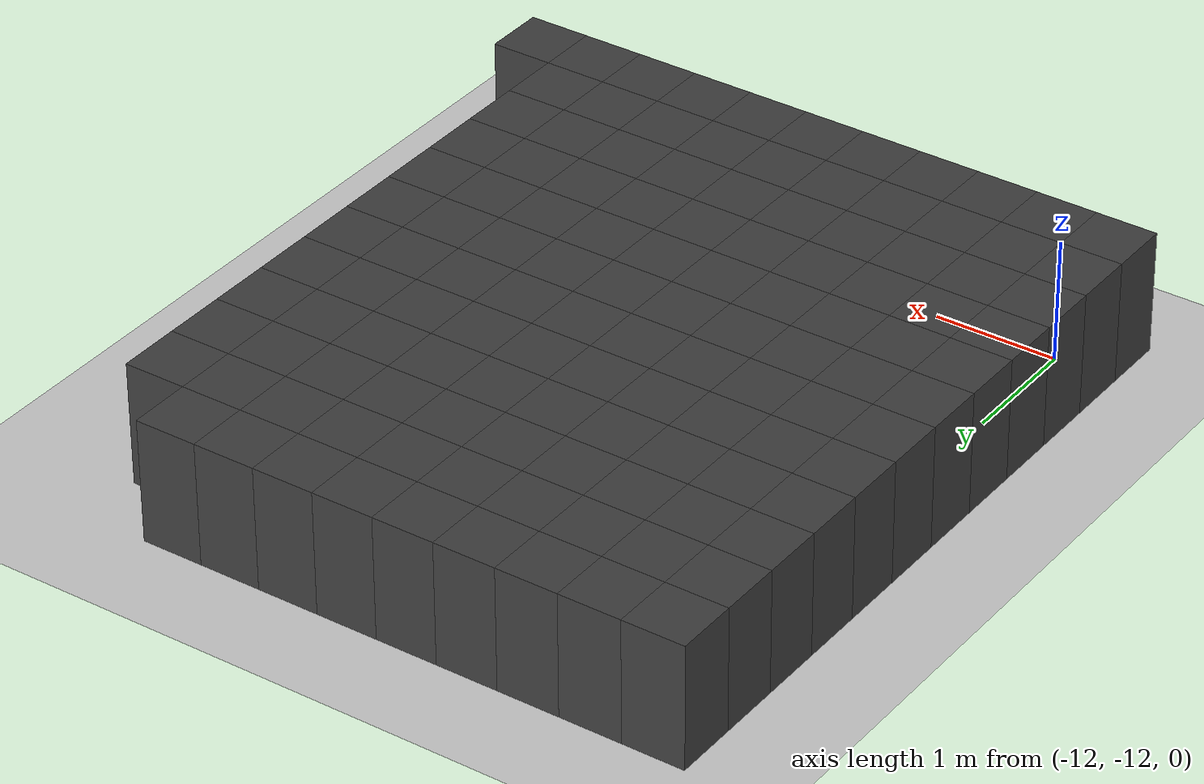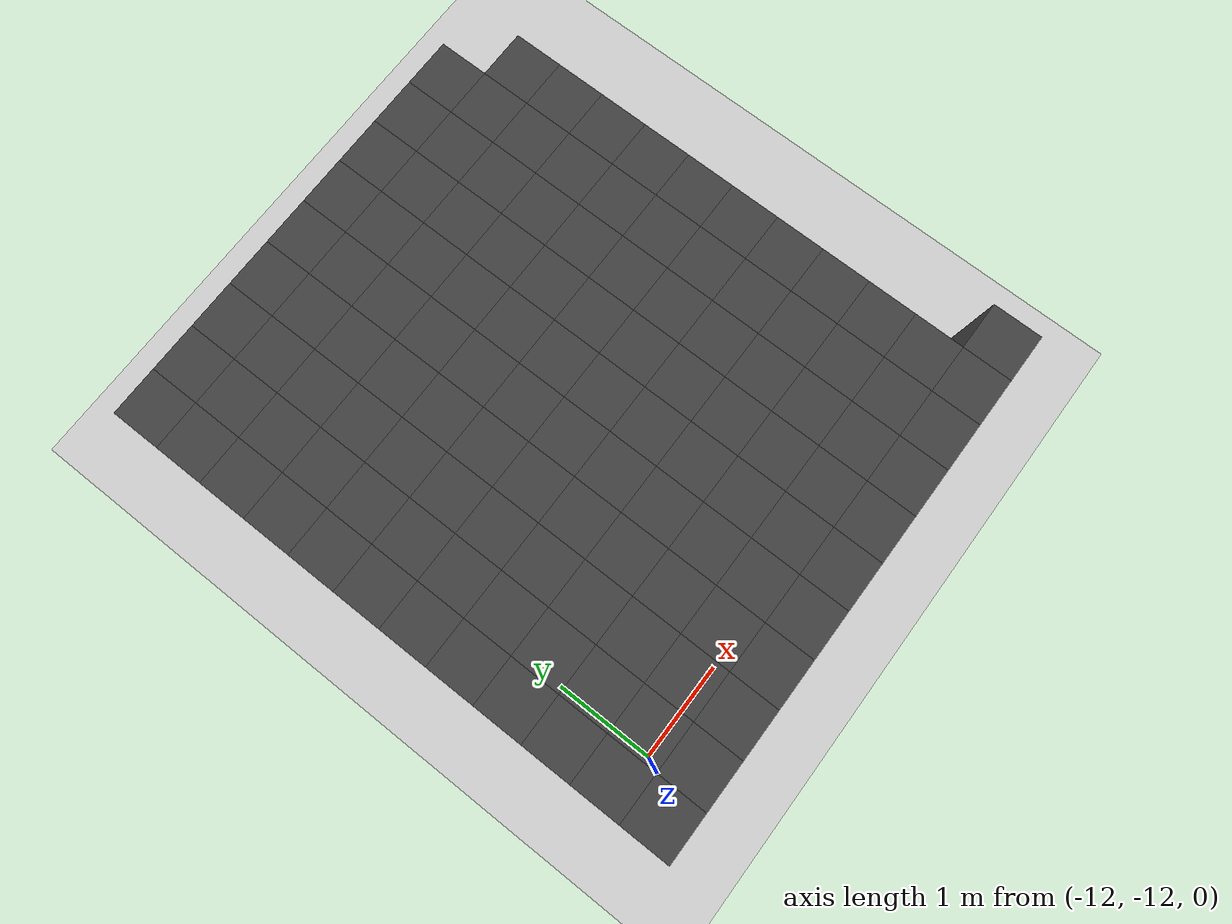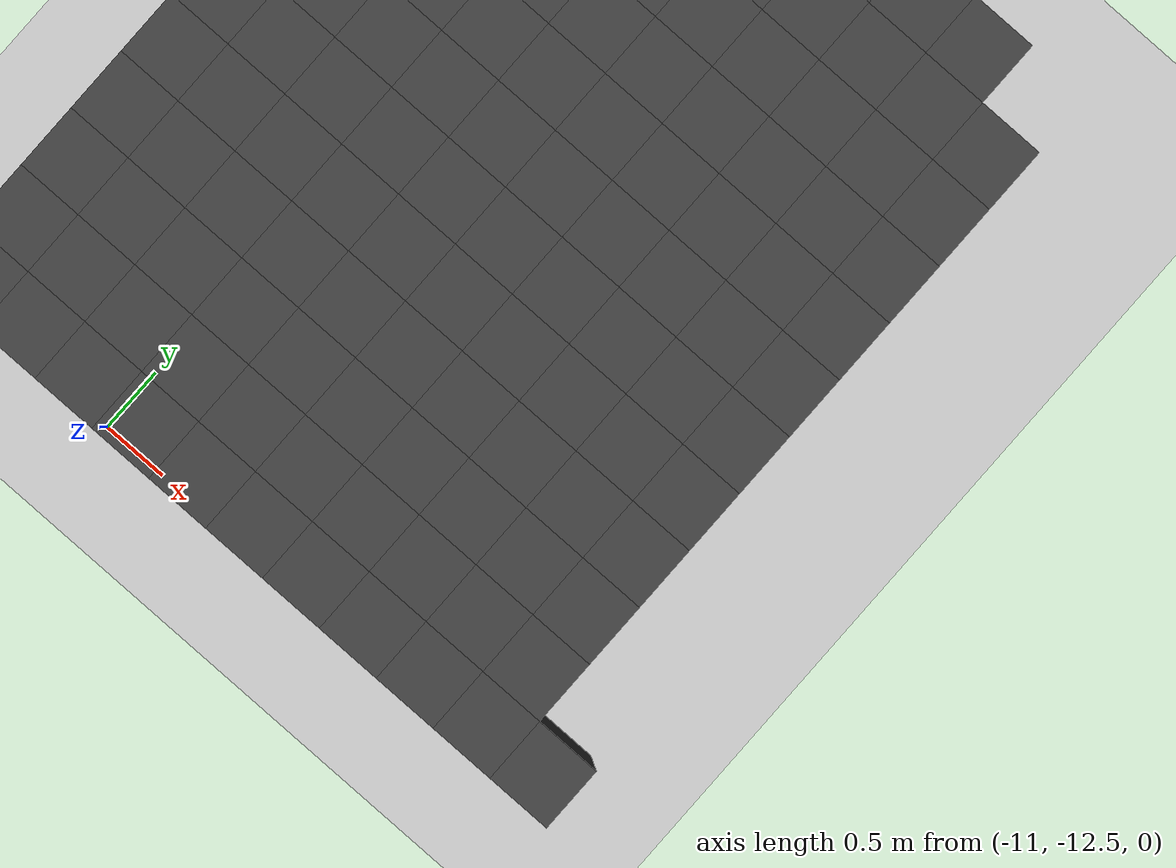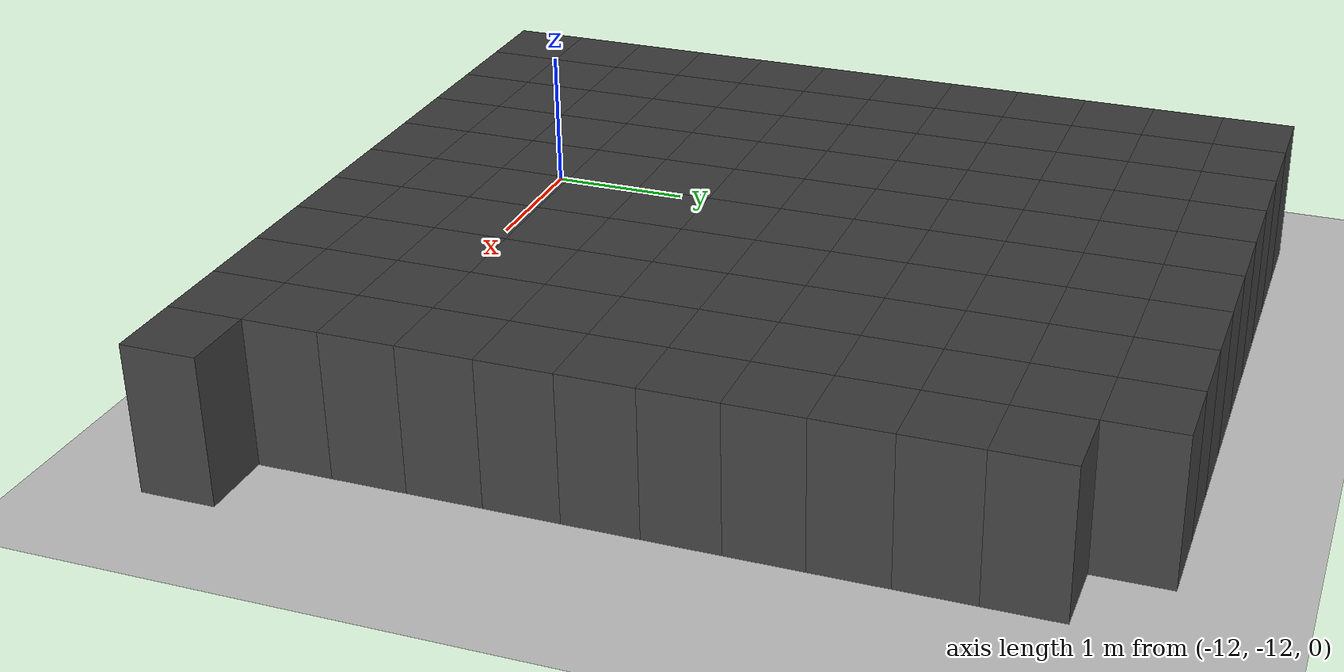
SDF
<sdf version="1.7">
 <world name="map_12885">
  <model name="ground_plane">
   <static>true</static>
   <link name="link">
    <collision name="collision">
     <geometry><plane><normal>0 0 1</normal><size>200 200</size></plane></geometry>
    </collision>
    <visual name="visual">
     <geometry><plane><normal>0 0 1</normal><size>200 200</size></plane></geometry>
     <material><ambient>0.8 0.8 0.8 1</ambient><diffuse>0.8 0.8 0.8 1</diffuse></material>
    </visual>
   </link>
  </model>
  <model name="maze_environment">
   <static>true</static>
   <link name="wall_1514">
    <pose>-12.250 -6.750 0.500 0 0 0</pose>
    <collision name="col"><geometry><box><size>0.5 0.5 1.0</size></box></geometry></collision>
    <visual name="vis">
     <geometry><box><size>0.5 0.5 1.0</size></box></geometry>
     <material><ambient>0.15 0.15 0.15 1</ambient><diffuse>0.25 0.25 0.25 1</diffuse></material>
    </visual>
   </link>
   <link name="wall_1515">
    <pose>-11.750 -6.750 0.500 0 0 0</pose>
    <collision name="col"><geometry><box><size>0.5 0.5 1.0</size></box></geometry></collision>
    <visual name="vis">
     <geometry><box><size>0.5 0.5 1.0</size></box></geometry>
     <material><ambient>0.15 0.15 0.15 1</ambient><diffuse>0.25 0.25 0.25 1</diffuse></material>
    </visual>
   </link>
   <link name="wall_1516">
    <pose>-11.250 -6.750 0.500 0 0 0</pose>
    <collision name="col"><geometry><box><size>0.5 0.5 1.0</size></box></geometry></collision>
    <visual name="vis">
     <geometry><box><size>0.5 0.5 1.0</size></box></geometry>
     <material><ambient>0.15 0.15 0.15 1</ambient><diffuse>0.25 0.25 0.25 1</diffuse></material>
    </visual>
   </link>
   <link name="wall_1517">
    <pose>-10.750 -6.750 0.500 0 0 0</pose>
    <collision name="col"><geometry><box><size>0.5 0.5 1.0</size></box></geometry></collision>
    <visual name="vis">
     <geometry><box><size>0.5 0.5 1.0</size></box></geometry>
     <material><ambient>0.15 0.15 0.15 1</ambient><diffuse>0.25 0.25 0.25 1</diffuse></material>
    </visual>
   </link>
   <link name="wall_1518">
    <pose>-10.250 -6.750 0.500 0 0 0</pose>
    <collision name="col"><geometry><box><size>0.5 0.5 1.0</size></box></geometry></collision>
    <visual name="vis">
     <geometry><box><size>0.5 0.5 1.0</size></box></geometry>
     <material><ambient>0.15 0.15 0.15 1</ambient><diffuse>0.25 0.25 0.25 1</diffuse></material>
    </visual>
   </link>
   <link name="wall_1519">
    <pose>-9.750 -6.750 0.500 0 0 0</pose>
    <collision name="col"><geometry><box><size>0.5 0.5 1.0</size></box></geometry></collision>
    <visual name="vis">
     <geometry><box><size>0.5 0.5 1.0</size></box></geometry>
     <material><ambient>0.15 0.15 0.15 1</ambient><diffuse>0.25 0.25 0.25 1</diffuse></material>
    </visual>
   </link>
   <link name="wall_1520">
    <pose>-9.250 -6.750 0.500 0 0 0</pose>
    <collision name="col"><geometry><box><size>0.5 0.5 1.0</size></box></geometry></collision>
    <visual name="vis">
     <geometry><box><size>0.5 0.5 1.0</size></box></geometry>
     <material><ambient>0.15 0.15 0.15 1</ambient><diffuse>0.25 0.25 0.25 1</diffuse></material>
    </visual>
   </link>
   <link name="wall_1521">
    <pose>-8.750 -6.750 0.500 0 0 0</pose>
    <collision name="col"><geometry><box><size>0.5 0.5 1.0</size></box></geometry></collision>
    <visual name="vis">
     <geometry><box><size>0.5 0.5 1.0</size></box></geometry>
     <material><ambient>0.15 0.15 0.15 1</ambient><diffuse>0.25 0.25 0.25 1</diffuse></material>
    </visual>
   </link>
   <link name="wall_1522">
    <pose>-8.250 -6.750 0.500 0 0 0</pose>
    <collision name="col"><geometry><box><size>0.5 0.5 1.0</size></box></geometry></collision>
    <visual name="vis">
     <geometry><box><size>0.5 0.5 1.0</size></box></geometry>
     <material><ambient>0.15 0.15 0.15 1</ambient><diffuse>0.25 0.25 0.25 1</diffuse></material>
    </visual>
   </link>
   <link name="wall_1545">
    <pose>-12.250 -7.250 0.500 0 0 0</pose>
    <collision name="col"><geometry><box><size>0.5 0.5 1.0</size></box></geometry></collision>
    <visual name="vis">
     <geometry><box><size>0.5 0.5 1.0</size></box></geometry>
     <material><ambient>0.15 0.15 0.15 1</ambient><diffuse>0.25 0.25 0.25 1</diffuse></material>
    </visual>
   </link>
   <link name="wall_1546">
    <pose>-11.750 -7.250 0.500 0 0 0</pose>
    <collision name="col"><geometry><box><size>0.5 0.5 1.0</size></box></geometry></collision>
    <visual name="vis">
     <geometry><box><size>0.5 0.5 1.0</size></box></geometry>
     <material><ambient>0.15 0.15 0.15 1</ambient><diffuse>0.25 0.25 0.25 1</diffuse></material>
    </visual>
   </link>
   <link name="wall_1547">
    <pose>-11.250 -7.250 0.500 0 0 0</pose>
    <collision name="col"><geometry><box><size>0.5 0.5 1.0</size></box></geometry></collision>
    <visual name="vis">
     <geometry><box><size>0.5 0.5 1.0</size></box></geometry>
     <material><ambient>0.15 0.15 0.15 1</ambient><diffuse>0.25 0.25 0.25 1</diffuse></material>
    </visual>
   </link>
   <link name="wall_1548">
    <pose>-10.750 -7.250 0.500 0 0 0</pose>
    <collision name="col"><geometry><box><size>0.5 0.5 1.0</size></box></geometry></collision>
    <visual name="vis">
     <geometry><box><size>0.5 0.5 1.0</size></box></geometry>
     <material><ambient>0.15 0.15 0.15 1</ambient><diffuse>0.25 0.25 0.25 1</diffuse></material>
    </visual>
   </link>
   <link name="wall_1549">
    <pose>-10.250 -7.250 0.500 0 0 0</pose>
    <collision name="col"><geometry><box><size>0.5 0.5 1.0</size></box></geometry></collision>
    <visual name="vis">
     <geometry><box><size>0.5 0.5 1.0</size></box></geometry>
     <material><ambient>0.15 0.15 0.15 1</ambient><diffuse>0.25 0.25 0.25 1</diffuse></material>
    </visual>
   </link>
   <link name="wall_1550">
    <pose>-9.750 -7.250 0.500 0 0 0</pose>
    <collision name="col"><geometry><box><size>0.5 0.5 1.0</size></box></geometry></collision>
    <visual name="vis">
     <geometry><box><size>0.5 0.5 1.0</size></box></geometry>
     <material><ambient>0.15 0.15 0.15 1</ambient><diffuse>0.25 0.25 0.25 1</diffuse></material>
    </visual>
   </link>
   <link name="wall_1551">
    <pose>-9.250 -7.250 0.500 0 0 0</pose>
    <collision name="col"><geometry><box><size>0.5 0.5 1.0</size></box></geometry></collision>
    <visual name="vis">
     <geometry><box><size>0.5 0.5 1.0</size></box></geometry>
     <material><ambient>0.15 0.15 0.15 1</ambient><diffuse>0.25 0.25 0.25 1</diffuse></material>
    </visual>
   </link>
   <link name="wall_1552">
    <pose>-8.750 -7.250 0.500 0 0 0</pose>
    <collision name="col"><geometry><box><size>0.5 0.5 1.0</size></box></geometry></collision>
    <visual name="vis">
     <geometry><box><size>0.5 0.5 1.0</size></box></geometry>
     <material><ambient>0.15 0.15 0.15 1</ambient><diffuse>0.25 0.25 0.25 1</diffuse></material>
    </visual>
   </link>
   <link name="wall_1553">
    <pose>-8.250 -7.250 0.500 0 0 0</pose>
    <collision name="col"><geometry><box><size>0.5 0.5 1.0</size></box></geometry></collision>
    <visual name="vis">
     <geometry><box><size>0.5 0.5 1.0</size></box></geometry>
     <material><ambient>0.15 0.15 0.15 1</ambient><diffuse>0.25 0.25 0.25 1</diffuse></material>
    </visual>
   </link>
   <link name="wall_1554">
    <pose>-7.750 -7.250 0.500 0 0 0</pose>
    <collision name="col"><geometry><box><size>0.5 0.5 1.0</size></box></geometry></collision>
    <visual name="vis">
     <geometry><box><size>0.5 0.5 1.0</size></box></geometry>
     <material><ambient>0.15 0.15 0.15 1</ambient><diffuse>0.25 0.25 0.25 1</diffuse></material>
    </visual>
   </link>
   <link name="wall_1579">
    <pose>-12.250 -7.750 0.500 0 0 0</pose>
    <collision name="col"><geometry><box><size>0.5 0.5 1.0</size></box></geometry></collision>
    <visual name="vis">
     <geometry><box><size>0.5 0.5 1.0</size></box></geometry>
     <material><ambient>0.15 0.15 0.15 1</ambient><diffuse>0.25 0.25 0.25 1</diffuse></material>
    </visual>
   </link>
   <link name="wall_1580">
    <pose>-11.750 -7.750 0.500 0 0 0</pose>
    <collision name="col"><geometry><box><size>0.5 0.5 1.0</size></box></geometry></collision>
    <visual name="vis">
     <geometry><box><size>0.5 0.5 1.0</size></box></geometry>
     <material><ambient>0.15 0.15 0.15 1</ambient><diffuse>0.25 0.25 0.25 1</diffuse></material>
    </visual>
   </link>
   <link name="wall_1581">
    <pose>-11.250 -7.750 0.500 0 0 0</pose>
    <collision name="col"><geometry><box><size>0.5 0.5 1.0</size></box></geometry></collision>
    <visual name="vis">
     <geometry><box><size>0.5 0.5 1.0</size></box></geometry>
     <material><ambient>0.15 0.15 0.15 1</ambient><diffuse>0.25 0.25 0.25 1</diffuse></material>
    </visual>
   </link>
   <link name="wall_1582">
    <pose>-10.750 -7.750 0.500 0 0 0</pose>
    <collision name="col"><geometry><box><size>0.5 0.5 1.0</size></box></geometry></collision>
    <visual name="vis">
     <geometry><box><size>0.5 0.5 1.0</size></box></geometry>
     <material><ambient>0.15 0.15 0.15 1</ambient><diffuse>0.25 0.25 0.25 1</diffuse></material>
    </visual>
   </link>
   <link name="wall_1583">
    <pose>-10.250 -7.750 0.500 0 0 0</pose>
    <collision name="col"><geometry><box><size>0.5 0.5 1.0</size></box></geometry></collision>
    <visual name="vis">
     <geometry><box><size>0.5 0.5 1.0</size></box></geometry>
     <material><ambient>0.15 0.15 0.15 1</ambient><diffuse>0.25 0.25 0.25 1</diffuse></material>
    </visual>
   </link>
   <link name="wall_1584">
    <pose>-9.750 -7.750 0.500 0 0 0</pose>
    <collision name="col"><geometry><box><size>0.5 0.5 1.0</size></box></geometry></collision>
    <visual name="vis">
     <geometry><box><size>0.5 0.5 1.0</size></box></geometry>
     <material><ambient>0.15 0.15 0.15 1</ambient><diffuse>0.25 0.25 0.25 1</diffuse></material>
    </visual>
   </link>
   <link name="wall_1585">
    <pose>-9.250 -7.750 0.500 0 0 0</pose>
    <collision name="col"><geometry><box><size>0.5 0.5 1.0</size></box></geometry></collision>
    <visual name="vis">
     <geometry><box><size>0.5 0.5 1.0</size></box></geometry>
     <material><ambient>0.15 0.15 0.15 1</ambient><diffuse>0.25 0.25 0.25 1</diffuse></material>
    </visual>
   </link>
   <link name="wall_1586">
    <pose>-8.750 -7.750 0.500 0 0 0</pose>
    <collision name="col"><geometry><box><size>0.5 0.5 1.0</size></box></geometry></collision>
    <visual name="vis">
     <geometry><box><size>0.5 0.5 1.0</size></box></geometry>
     <material><ambient>0.15 0.15 0.15 1</ambient><diffuse>0.25 0.25 0.25 1</diffuse></material>
    </visual>
   </link>
   <link name="wall_1587">
    <pose>-8.250 -7.750 0.500 0 0 0</pose>
    <collision name="col"><geometry><box><size>0.5 0.5 1.0</size></box></geometry></collision>
    <visual name="vis">
     <geometry><box><size>0.5 0.5 1.0</size></box></geometry>
     <material><ambient>0.15 0.15 0.15 1</ambient><diffuse>0.25 0.25 0.25 1</diffuse></material>
    </visual>
   </link>
   <link name="wall_1588">
    <pose>-7.750 -7.750 0.500 0 0 0</pose>
    <collision name="col"><geometry><box><size>0.5 0.5 1.0</size></box></geometry></collision>
    <visual name="vis">
     <geometry><box><size>0.5 0.5 1.0</size></box></geometry>
     <material><ambient>0.15 0.15 0.15 1</ambient><diffuse>0.25 0.25 0.25 1</diffuse></material>
    </visual>
   </link>
   <link name="wall_1609">
    <pose>-12.250 -8.250 0.500 0 0 0</pose>
    <collision name="col"><geometry><box><size>0.5 0.5 1.0</size></box></geometry></collision>
    <visual name="vis">
     <geometry><box><size>0.5 0.5 1.0</size></box></geometry>
     <material><ambient>0.15 0.15 0.15 1</ambient><diffuse>0.25 0.25 0.25 1</diffuse></material>
    </visual>
   </link>
   <link name="wall_1610">
    <pose>-11.750 -8.250 0.500 0 0 0</pose>
    <collision name="col"><geometry><box><size>0.5 0.5 1.0</size></box></geometry></collision>
    <visual name="vis">
     <geometry><box><size>0.5 0.5 1.0</size></box></geometry>
     <material><ambient>0.15 0.15 0.15 1</ambient><diffuse>0.25 0.25 0.25 1</diffuse></material>
    </visual>
   </link>
   <link name="wall_1611">
    <pose>-11.250 -8.250 0.500 0 0 0</pose>
    <collision name="col"><geometry><box><size>0.5 0.5 1.0</size></box></geometry></collision>
    <visual name="vis">
     <geometry><box><size>0.5 0.5 1.0</size></box></geometry>
     <material><ambient>0.15 0.15 0.15 1</ambient><diffuse>0.25 0.25 0.25 1</diffuse></material>
    </visual>
   </link>
   <link name="wall_1612">
    <pose>-10.750 -8.250 0.500 0 0 0</pose>
    <collision name="col"><geometry><box><size>0.5 0.5 1.0</size></box></geometry></collision>
    <visual name="vis">
     <geometry><box><size>0.5 0.5 1.0</size></box></geometry>
     <material><ambient>0.15 0.15 0.15 1</ambient><diffuse>0.25 0.25 0.25 1</diffuse></material>
    </visual>
   </link>
   <link name="wall_1613">
    <pose>-10.250 -8.250 0.500 0 0 0</pose>
    <collision name="col"><geometry><box><size>0.5 0.5 1.0</size></box></geometry></collision>
    <visual name="vis">
     <geometry><box><size>0.5 0.5 1.0</size></box></geometry>
     <material><ambient>0.15 0.15 0.15 1</ambient><diffuse>0.25 0.25 0.25 1</diffuse></material>
    </visual>
   </link>
   <link name="wall_1614">
    <pose>-9.750 -8.250 0.500 0 0 0</pose>
    <collision name="col"><geometry><box><size>0.5 0.5 1.0</size></box></geometry></collision>
    <visual name="vis">
     <geometry><box><size>0.5 0.5 1.0</size></box></geometry>
     <material><ambient>0.15 0.15 0.15 1</ambient><diffuse>0.25 0.25 0.25 1</diffuse></material>
    </visual>
   </link>
   <link name="wall_1615">
    <pose>-9.250 -8.250 0.500 0 0 0</pose>
    <collision name="col"><geometry><box><size>0.5 0.5 1.0</size></box></geometry></collision>
    <visual name="vis">
     <geometry><box><size>0.5 0.5 1.0</size></box></geometry>
     <material><ambient>0.15 0.15 0.15 1</ambient><diffuse>0.25 0.25 0.25 1</diffuse></material>
    </visual>
   </link>
   <link name="wall_1616">
    <pose>-8.750 -8.250 0.500 0 0 0</pose>
    <collision name="col"><geometry><box><size>0.5 0.5 1.0</size></box></geometry></collision>
    <visual name="vis">
     <geometry><box><size>0.5 0.5 1.0</size></box></geometry>
     <material><ambient>0.15 0.15 0.15 1</ambient><diffuse>0.25 0.25 0.25 1</diffuse></material>
    </visual>
   </link>
   <link name="wall_1617">
    <pose>-8.250 -8.250 0.500 0 0 0</pose>
    <collision name="col"><geometry><box><size>0.5 0.5 1.0</size></box></geometry></collision>
    <visual name="vis">
     <geometry><box><size>0.5 0.5 1.0</size></box></geometry>
     <material><ambient>0.15 0.15 0.15 1</ambient><diffuse>0.25 0.25 0.25 1</diffuse></material>
    </visual>
   </link>
   <link name="wall_1618">
    <pose>-7.750 -8.250 0.500 0 0 0</pose>
    <collision name="col"><geometry><box><size>0.5 0.5 1.0</size></box></geometry></collision>
    <visual name="vis">
     <geometry><box><size>0.5 0.5 1.0</size></box></geometry>
     <material><ambient>0.15 0.15 0.15 1</ambient><diffuse>0.25 0.25 0.25 1</diffuse></material>
    </visual>
   </link>
   <link name="wall_1630">
    <pose>-12.250 -8.750 0.500 0 0 0</pose>
    <collision name="col"><geometry><box><size>0.5 0.5 1.0</size></box></geometry></collision>
    <visual name="vis">
     <geometry><box><size>0.5 0.5 1.0</size></box></geometry>
     <material><ambient>0.15 0.15 0.15 1</ambient><diffuse>0.25 0.25 0.25 1</diffuse></material>
    </visual>
   </link>
   <link name="wall_1631">
    <pose>-11.750 -8.750 0.500 0 0 0</pose>
    <collision name="col"><geometry><box><size>0.5 0.5 1.0</size></box></geometry></collision>
    <visual name="vis">
     <geometry><box><size>0.5 0.5 1.0</size></box></geometry>
     <material><ambient>0.15 0.15 0.15 1</ambient><diffuse>0.25 0.25 0.25 1</diffuse></material>
    </visual>
   </link>
   <link name="wall_1632">
    <pose>-11.250 -8.750 0.500 0 0 0</pose>
    <collision name="col"><geometry><box><size>0.5 0.5 1.0</size></box></geometry></collision>
    <visual name="vis">
     <geometry><box><size>0.5 0.5 1.0</size></box></geometry>
     <material><ambient>0.15 0.15 0.15 1</ambient><diffuse>0.25 0.25 0.25 1</diffuse></material>
    </visual>
   </link>
   <link name="wall_1633">
    <pose>-10.750 -8.750 0.500 0 0 0</pose>
    <collision name="col"><geometry><box><size>0.5 0.5 1.0</size></box></geometry></collision>
    <visual name="vis">
     <geometry><box><size>0.5 0.5 1.0</size></box></geometry>
     <material><ambient>0.15 0.15 0.15 1</ambient><diffuse>0.25 0.25 0.25 1</diffuse></material>
    </visual>
   </link>
   <link name="wall_1634">
    <pose>-10.250 -8.750 0.500 0 0 0</pose>
    <collision name="col"><geometry><box><size>0.5 0.5 1.0</size></box></geometry></collision>
    <visual name="vis">
     <geometry><box><size>0.5 0.5 1.0</size></box></geometry>
     <material><ambient>0.15 0.15 0.15 1</ambient><diffuse>0.25 0.25 0.25 1</diffuse></material>
    </visual>
   </link>
   <link name="wall_1635">
    <pose>-9.750 -8.750 0.500 0 0 0</pose>
    <collision name="col"><geometry><box><size>0.5 0.5 1.0</size></box></geometry></collision>
    <visual name="vis">
     <geometry><box><size>0.5 0.5 1.0</size></box></geometry>
     <material><ambient>0.15 0.15 0.15 1</ambient><diffuse>0.25 0.25 0.25 1</diffuse></material>
    </visual>
   </link>
   <link name="wall_1636">
    <pose>-9.250 -8.750 0.500 0 0 0</pose>
    <collision name="col"><geometry><box><size>0.5 0.5 1.0</size></box></geometry></collision>
    <visual name="vis">
     <geometry><box><size>0.5 0.5 1.0</size></box></geometry>
     <material><ambient>0.15 0.15 0.15 1</ambient><diffuse>0.25 0.25 0.25 1</diffuse></material>
    </visual>
   </link>
   <link name="wall_1637">
    <pose>-8.750 -8.750 0.500 0 0 0</pose>
    <collision name="col"><geometry><box><size>0.5 0.5 1.0</size></box></geometry></collision>
    <visual name="vis">
     <geometry><box><size>0.5 0.5 1.0</size></box></geometry>
     <material><ambient>0.15 0.15 0.15 1</ambient><diffuse>0.25 0.25 0.25 1</diffuse></material>
    </visual>
   </link>
   <link name="wall_1638">
    <pose>-8.250 -8.750 0.500 0 0 0</pose>
    <collision name="col"><geometry><box><size>0.5 0.5 1.0</size></box></geometry></collision>
    <visual name="vis">
     <geometry><box><size>0.5 0.5 1.0</size></box></geometry>
     <material><ambient>0.15 0.15 0.15 1</ambient><diffuse>0.25 0.25 0.25 1</diffuse></material>
    </visual>
   </link>
   <link name="wall_1639">
    <pose>-7.750 -8.750 0.500 0 0 0</pose>
    <collision name="col"><geometry><box><size>0.5 0.5 1.0</size></box></geometry></collision>
    <visual name="vis">
     <geometry><box><size>0.5 0.5 1.0</size></box></geometry>
     <material><ambient>0.15 0.15 0.15 1</ambient><diffuse>0.25 0.25 0.25 1</diffuse></material>
    </visual>
   </link>
   <link name="wall_1658">
    <pose>-12.250 -9.250 0.500 0 0 0</pose>
    <collision name="col"><geometry><box><size>0.5 0.5 1.0</size></box></geometry></collision>
    <visual name="vis">
     <geometry><box><size>0.5 0.5 1.0</size></box></geometry>
     <material><ambient>0.15 0.15 0.15 1</ambient><diffuse>0.25 0.25 0.25 1</diffuse></material>
    </visual>
   </link>
   <link name="wall_1659">
    <pose>-11.750 -9.250 0.500 0 0 0</pose>
    <collision name="col"><geometry><box><size>0.5 0.5 1.0</size></box></geometry></collision>
    <visual name="vis">
     <geometry><box><size>0.5 0.5 1.0</size></box></geometry>
     <material><ambient>0.15 0.15 0.15 1</ambient><diffuse>0.25 0.25 0.25 1</diffuse></material>
    </visual>
   </link>
   <link name="wall_1660">
    <pose>-11.250 -9.250 0.500 0 0 0</pose>
    <collision name="col"><geometry><box><size>0.5 0.5 1.0</size></box></geometry></collision>
    <visual name="vis">
     <geometry><box><size>0.5 0.5 1.0</size></box></geometry>
     <material><ambient>0.15 0.15 0.15 1</ambient><diffuse>0.25 0.25 0.25 1</diffuse></material>
    </visual>
   </link>
   <link name="wall_1661">
    <pose>-10.750 -9.250 0.500 0 0 0</pose>
    <collision name="col"><geometry><box><size>0.5 0.5 1.0</size></box></geometry></collision>
    <visual name="vis">
     <geometry><box><size>0.5 0.5 1.0</size></box></geometry>
     <material><ambient>0.15 0.15 0.15 1</ambient><diffuse>0.25 0.25 0.25 1</diffuse></material>
    </visual>
   </link>
   <link name="wall_1662">
    <pose>-10.250 -9.250 0.500 0 0 0</pose>
    <collision name="col"><geometry><box><size>0.5 0.5 1.0</size></box></geometry></collision>
    <visual name="vis">
     <geometry><box><size>0.5 0.5 1.0</size></box></geometry>
     <material><ambient>0.15 0.15 0.15 1</ambient><diffuse>0.25 0.25 0.25 1</diffuse></material>
    </visual>
   </link>
   <link name="wall_1663">
    <pose>-9.750 -9.250 0.500 0 0 0</pose>
    <collision name="col"><geometry><box><size>0.5 0.5 1.0</size></box></geometry></collision>
    <visual name="vis">
     <geometry><box><size>0.5 0.5 1.0</size></box></geometry>
     <material><ambient>0.15 0.15 0.15 1</ambient><diffuse>0.25 0.25 0.25 1</diffuse></material>
    </visual>
   </link>
   <link name="wall_1664">
    <pose>-9.250 -9.250 0.500 0 0 0</pose>
    <collision name="col"><geometry><box><size>0.5 0.5 1.0</size></box></geometry></collision>
    <visual name="vis">
     <geometry><box><size>0.5 0.5 1.0</size></box></geometry>
     <material><ambient>0.15 0.15 0.15 1</ambient><diffuse>0.25 0.25 0.25 1</diffuse></material>
    </visual>
   </link>
   <link name="wall_1665">
    <pose>-8.750 -9.250 0.500 0 0 0</pose>
    <collision name="col"><geometry><box><size>0.5 0.5 1.0</size></box></geometry></collision>
    <visual name="vis">
     <geometry><box><size>0.5 0.5 1.0</size></box></geometry>
     <material><ambient>0.15 0.15 0.15 1</ambient><diffuse>0.25 0.25 0.25 1</diffuse></material>
    </visual>
   </link>
   <link name="wall_1666">
    <pose>-8.250 -9.250 0.500 0 0 0</pose>
    <collision name="col"><geometry><box><size>0.5 0.5 1.0</size></box></geometry></collision>
    <visual name="vis">
     <geometry><box><size>0.5 0.5 1.0</size></box></geometry>
     <material><ambient>0.15 0.15 0.15 1</ambient><diffuse>0.25 0.25 0.25 1</diffuse></material>
    </visual>
   </link>
   <link name="wall_1667">
    <pose>-7.750 -9.250 0.500 0 0 0</pose>
    <collision name="col"><geometry><box><size>0.5 0.5 1.0</size></box></geometry></collision>
    <visual name="vis">
     <geometry><box><size>0.5 0.5 1.0</size></box></geometry>
     <material><ambient>0.15 0.15 0.15 1</ambient><diffuse>0.25 0.25 0.25 1</diffuse></material>
    </visual>
   </link>
   <link name="wall_1683">
    <pose>-12.250 -9.750 0.500 0 0 0</pose>
    <collision name="col"><geometry><box><size>0.5 0.5 1.0</size></box></geometry></collision>
    <visual name="vis">
     <geometry><box><size>0.5 0.5 1.0</size></box></geometry>
     <material><ambient>0.15 0.15 0.15 1</ambient><diffuse>0.25 0.25 0.25 1</diffuse></material>
    </visual>
   </link>
   <link name="wall_1684">
    <pose>-11.750 -9.750 0.500 0 0 0</pose>
    <collision name="col"><geometry><box><size>0.5 0.5 1.0</size></box></geometry></collision>
    <visual name="vis">
     <geometry><box><size>0.5 0.5 1.0</size></box></geometry>
     <material><ambient>0.15 0.15 0.15 1</ambient><diffuse>0.25 0.25 0.25 1</diffuse></material>
    </visual>
   </link>
   <link name="wall_1685">
    <pose>-11.250 -9.750 0.500 0 0 0</pose>
    <collision name="col"><geometry><box><size>0.5 0.5 1.0</size></box></geometry></collision>
    <visual name="vis">
     <geometry><box><size>0.5 0.5 1.0</size></box></geometry>
     <material><ambient>0.15 0.15 0.15 1</ambient><diffuse>0.25 0.25 0.25 1</diffuse></material>
    </visual>
   </link>
   <link name="wall_1686">
    <pose>-10.750 -9.750 0.500 0 0 0</pose>
    <collision name="col"><geometry><box><size>0.5 0.5 1.0</size></box></geometry></collision>
    <visual name="vis">
     <geometry><box><size>0.5 0.5 1.0</size></box></geometry>
     <material><ambient>0.15 0.15 0.15 1</ambient><diffuse>0.25 0.25 0.25 1</diffuse></material>
    </visual>
   </link>
   <link name="wall_1687">
    <pose>-10.250 -9.750 0.500 0 0 0</pose>
    <collision name="col"><geometry><box><size>0.5 0.5 1.0</size></box></geometry></collision>
    <visual name="vis">
     <geometry><box><size>0.5 0.5 1.0</size></box></geometry>
     <material><ambient>0.15 0.15 0.15 1</ambient><diffuse>0.25 0.25 0.25 1</diffuse></material>
    </visual>
   </link>
   <link name="wall_1688">
    <pose>-9.750 -9.750 0.500 0 0 0</pose>
    <collision name="col"><geometry><box><size>0.5 0.5 1.0</size></box></geometry></collision>
    <visual name="vis">
     <geometry><box><size>0.5 0.5 1.0</size></box></geometry>
     <material><ambient>0.15 0.15 0.15 1</ambient><diffuse>0.25 0.25 0.25 1</diffuse></material>
    </visual>
   </link>
   <link name="wall_1689">
    <pose>-9.250 -9.750 0.500 0 0 0</pose>
    <collision name="col"><geometry><box><size>0.5 0.5 1.0</size></box></geometry></collision>
    <visual name="vis">
     <geometry><box><size>0.5 0.5 1.0</size></box></geometry>
     <material><ambient>0.15 0.15 0.15 1</ambient><diffuse>0.25 0.25 0.25 1</diffuse></material>
    </visual>
   </link>
   <link name="wall_1690">
    <pose>-8.750 -9.750 0.500 0 0 0</pose>
    <collision name="col"><geometry><box><size>0.5 0.5 1.0</size></box></geometry></collision>
    <visual name="vis">
     <geometry><box><size>0.5 0.5 1.0</size></box></geometry>
     <material><ambient>0.15 0.15 0.15 1</ambient><diffuse>0.25 0.25 0.25 1</diffuse></material>
    </visual>
   </link>
   <link name="wall_1691">
    <pose>-8.250 -9.750 0.500 0 0 0</pose>
    <collision name="col"><geometry><box><size>0.5 0.5 1.0</size></box></geometry></collision>
    <visual name="vis">
     <geometry><box><size>0.5 0.5 1.0</size></box></geometry>
     <material><ambient>0.15 0.15 0.15 1</ambient><diffuse>0.25 0.25 0.25 1</diffuse></material>
    </visual>
   </link>
   <link name="wall_1692">
    <pose>-7.750 -9.750 0.500 0 0 0</pose>
    <collision name="col"><geometry><box><size>0.5 0.5 1.0</size></box></geometry></collision>
    <visual name="vis">
     <geometry><box><size>0.5 0.5 1.0</size></box></geometry>
     <material><ambient>0.15 0.15 0.15 1</ambient><diffuse>0.25 0.25 0.25 1</diffuse></material>
    </visual>
   </link>
   <link name="wall_1711">
    <pose>-12.250 -10.250 0.500 0 0 0</pose>
    <collision name="col"><geometry><box><size>0.5 0.5 1.0</size></box></geometry></collision>
    <visual name="vis">
     <geometry><box><size>0.5 0.5 1.0</size></box></geometry>
     <material><ambient>0.15 0.15 0.15 1</ambient><diffuse>0.25 0.25 0.25 1</diffuse></material>
    </visual>
   </link>
   <link name="wall_1712">
    <pose>-11.750 -10.250 0.500 0 0 0</pose>
    <collision name="col"><geometry><box><size>0.5 0.5 1.0</size></box></geometry></collision>
    <visual name="vis">
     <geometry><box><size>0.5 0.5 1.0</size></box></geometry>
     <material><ambient>0.15 0.15 0.15 1</ambient><diffuse>0.25 0.25 0.25 1</diffuse></material>
    </visual>
   </link>
   <link name="wall_1713">
    <pose>-11.250 -10.250 0.500 0 0 0</pose>
    <collision name="col"><geometry><box><size>0.5 0.5 1.0</size></box></geometry></collision>
    <visual name="vis">
     <geometry><box><size>0.5 0.5 1.0</size></box></geometry>
     <material><ambient>0.15 0.15 0.15 1</ambient><diffuse>0.25 0.25 0.25 1</diffuse></material>
    </visual>
   </link>
   <link name="wall_1714">
    <pose>-10.750 -10.250 0.500 0 0 0</pose>
    <collision name="col"><geometry><box><size>0.5 0.5 1.0</size></box></geometry></collision>
    <visual name="vis">
     <geometry><box><size>0.5 0.5 1.0</size></box></geometry>
     <material><ambient>0.15 0.15 0.15 1</ambient><diffuse>0.25 0.25 0.25 1</diffuse></material>
    </visual>
   </link>
   <link name="wall_1715">
    <pose>-10.250 -10.250 0.500 0 0 0</pose>
    <collision name="col"><geometry><box><size>0.5 0.5 1.0</size></box></geometry></collision>
    <visual name="vis">
     <geometry><box><size>0.5 0.5 1.0</size></box></geometry>
     <material><ambient>0.15 0.15 0.15 1</ambient><diffuse>0.25 0.25 0.25 1</diffuse></material>
    </visual>
   </link>
   <link name="wall_1716">
    <pose>-9.750 -10.250 0.500 0 0 0</pose>
    <collision name="col"><geometry><box><size>0.5 0.5 1.0</size></box></geometry></collision>
    <visual name="vis">
     <geometry><box><size>0.5 0.5 1.0</size></box></geometry>
     <material><ambient>0.15 0.15 0.15 1</ambient><diffuse>0.25 0.25 0.25 1</diffuse></material>
    </visual>
   </link>
   <link name="wall_1717">
    <pose>-9.250 -10.250 0.500 0 0 0</pose>
    <collision name="col"><geometry><box><size>0.5 0.5 1.0</size></box></geometry></collision>
    <visual name="vis">
     <geometry><box><size>0.5 0.5 1.0</size></box></geometry>
     <material><ambient>0.15 0.15 0.15 1</ambient><diffuse>0.25 0.25 0.25 1</diffuse></material>
    </visual>
   </link>
   <link name="wall_1718">
    <pose>-8.750 -10.250 0.500 0 0 0</pose>
    <collision name="col"><geometry><box><size>0.5 0.5 1.0</size></box></geometry></collision>
    <visual name="vis">
     <geometry><box><size>0.5 0.5 1.0</size></box></geometry>
     <material><ambient>0.15 0.15 0.15 1</ambient><diffuse>0.25 0.25 0.25 1</diffuse></material>
    </visual>
   </link>
   <link name="wall_1719">
    <pose>-8.250 -10.250 0.500 0 0 0</pose>
    <collision name="col"><geometry><box><size>0.5 0.5 1.0</size></box></geometry></collision>
    <visual name="vis">
     <geometry><box><size>0.5 0.5 1.0</size></box></geometry>
     <material><ambient>0.15 0.15 0.15 1</ambient><diffuse>0.25 0.25 0.25 1</diffuse></material>
    </visual>
   </link>
   <link name="wall_1720">
    <pose>-7.750 -10.250 0.500 0 0 0</pose>
    <collision name="col"><geometry><box><size>0.5 0.5 1.0</size></box></geometry></collision>
    <visual name="vis">
     <geometry><box><size>0.5 0.5 1.0</size></box></geometry>
     <material><ambient>0.15 0.15 0.15 1</ambient><diffuse>0.25 0.25 0.25 1</diffuse></material>
    </visual>
   </link>
   <link name="wall_1748">
    <pose>-12.250 -10.750 0.500 0 0 0</pose>
    <collision name="col"><geometry><box><size>0.5 0.5 1.0</size></box></geometry></collision>
    <visual name="vis">
     <geometry><box><size>0.5 0.5 1.0</size></box></geometry>
     <material><ambient>0.15 0.15 0.15 1</ambient><diffuse>0.25 0.25 0.25 1</diffuse></material>
    </visual>
   </link>
   <link name="wall_1749">
    <pose>-11.750 -10.750 0.500 0 0 0</pose>
    <collision name="col"><geometry><box><size>0.5 0.5 1.0</size></box></geometry></collision>
    <visual name="vis">
     <geometry><box><size>0.5 0.5 1.0</size></box></geometry>
     <material><ambient>0.15 0.15 0.15 1</ambient><diffuse>0.25 0.25 0.25 1</diffuse></material>
    </visual>
   </link>
   <link name="wall_1750">
    <pose>-11.250 -10.750 0.500 0 0 0</pose>
    <collision name="col"><geometry><box><size>0.5 0.5 1.0</size></box></geometry></collision>
    <visual name="vis">
     <geometry><box><size>0.5 0.5 1.0</size></box></geometry>
     <material><ambient>0.15 0.15 0.15 1</ambient><diffuse>0.25 0.25 0.25 1</diffuse></material>
    </visual>
   </link>
   <link name="wall_1751">
    <pose>-10.750 -10.750 0.500 0 0 0</pose>
    <collision name="col"><geometry><box><size>0.5 0.5 1.0</size></box></geometry></collision>
    <visual name="vis">
     <geometry><box><size>0.5 0.5 1.0</size></box></geometry>
     <material><ambient>0.15 0.15 0.15 1</ambient><diffuse>0.25 0.25 0.25 1</diffuse></material>
    </visual>
   </link>
   <link name="wall_1752">
    <pose>-10.250 -10.750 0.500 0 0 0</pose>
    <collision name="col"><geometry><box><size>0.5 0.5 1.0</size></box></geometry></collision>
    <visual name="vis">
     <geometry><box><size>0.5 0.5 1.0</size></box></geometry>
     <material><ambient>0.15 0.15 0.15 1</ambient><diffuse>0.25 0.25 0.25 1</diffuse></material>
    </visual>
   </link>
   <link name="wall_1753">
    <pose>-9.750 -10.750 0.500 0 0 0</pose>
    <collision name="col"><geometry><box><size>0.5 0.5 1.0</size></box></geometry></collision>
    <visual name="vis">
     <geometry><box><size>0.5 0.5 1.0</size></box></geometry>
     <material><ambient>0.15 0.15 0.15 1</ambient><diffuse>0.25 0.25 0.25 1</diffuse></material>
    </visual>
   </link>
   <link name="wall_1754">
    <pose>-9.250 -10.750 0.500 0 0 0</pose>
    <collision name="col"><geometry><box><size>0.5 0.5 1.0</size></box></geometry></collision>
    <visual name="vis">
     <geometry><box><size>0.5 0.5 1.0</size></box></geometry>
     <material><ambient>0.15 0.15 0.15 1</ambient><diffuse>0.25 0.25 0.25 1</diffuse></material>
    </visual>
   </link>
   <link name="wall_1755">
    <pose>-8.750 -10.750 0.500 0 0 0</pose>
    <collision name="col"><geometry><box><size>0.5 0.5 1.0</size></box></geometry></collision>
    <visual name="vis">
     <geometry><box><size>0.5 0.5 1.0</size></box></geometry>
     <material><ambient>0.15 0.15 0.15 1</ambient><diffuse>0.25 0.25 0.25 1</diffuse></material>
    </visual>
   </link>
   <link name="wall_1756">
    <pose>-8.250 -10.750 0.500 0 0 0</pose>
    <collision name="col"><geometry><box><size>0.5 0.5 1.0</size></box></geometry></collision>
    <visual name="vis">
     <geometry><box><size>0.5 0.5 1.0</size></box></geometry>
     <material><ambient>0.15 0.15 0.15 1</ambient><diffuse>0.25 0.25 0.25 1</diffuse></material>
    </visual>
   </link>
   <link name="wall_1757">
    <pose>-7.750 -10.750 0.500 0 0 0</pose>
    <collision name="col"><geometry><box><size>0.5 0.5 1.0</size></box></geometry></collision>
    <visual name="vis">
     <geometry><box><size>0.5 0.5 1.0</size></box></geometry>
     <material><ambient>0.15 0.15 0.15 1</ambient><diffuse>0.25 0.25 0.25 1</diffuse></material>
    </visual>
   </link>
   <link name="wall_1789">
    <pose>-12.250 -11.250 0.500 0 0 0</pose>
    <collision name="col"><geometry><box><size>0.5 0.5 1.0</size></box></geometry></collision>
    <visual name="vis">
     <geometry><box><size>0.5 0.5 1.0</size></box></geometry>
     <material><ambient>0.15 0.15 0.15 1</ambient><diffuse>0.25 0.25 0.25 1</diffuse></material>
    </visual>
   </link>
   <link name="wall_1790">
    <pose>-11.750 -11.250 0.500 0 0 0</pose>
    <collision name="col"><geometry><box><size>0.5 0.5 1.0</size></box></geometry></collision>
    <visual name="vis">
     <geometry><box><size>0.5 0.5 1.0</size></box></geometry>
     <material><ambient>0.15 0.15 0.15 1</ambient><diffuse>0.25 0.25 0.25 1</diffuse></material>
    </visual>
   </link>
   <link name="wall_1791">
    <pose>-11.250 -11.250 0.500 0 0 0</pose>
    <collision name="col"><geometry><box><size>0.5 0.5 1.0</size></box></geometry></collision>
    <visual name="vis">
     <geometry><box><size>0.5 0.5 1.0</size></box></geometry>
     <material><ambient>0.15 0.15 0.15 1</ambient><diffuse>0.25 0.25 0.25 1</diffuse></material>
    </visual>
   </link>
   <link name="wall_1792">
    <pose>-10.750 -11.250 0.500 0 0 0</pose>
    <collision name="col"><geometry><box><size>0.5 0.5 1.0</size></box></geometry></collision>
    <visual name="vis">
     <geometry><box><size>0.5 0.5 1.0</size></box></geometry>
     <material><ambient>0.15 0.15 0.15 1</ambient><diffuse>0.25 0.25 0.25 1</diffuse></material>
    </visual>
   </link>
   <link name="wall_1793">
    <pose>-10.250 -11.250 0.500 0 0 0</pose>
    <collision name="col"><geometry><box><size>0.5 0.5 1.0</size></box></geometry></collision>
    <visual name="vis">
     <geometry><box><size>0.5 0.5 1.0</size></box></geometry>
     <material><ambient>0.15 0.15 0.15 1</ambient><diffuse>0.25 0.25 0.25 1</diffuse></material>
    </visual>
   </link>
   <link name="wall_1794">
    <pose>-9.750 -11.250 0.500 0 0 0</pose>
    <collision name="col"><geometry><box><size>0.5 0.5 1.0</size></box></geometry></collision>
    <visual name="vis">
     <geometry><box><size>0.5 0.5 1.0</size></box></geometry>
     <material><ambient>0.15 0.15 0.15 1</ambient><diffuse>0.25 0.25 0.25 1</diffuse></material>
    </visual>
   </link>
   <link name="wall_1795">
    <pose>-9.250 -11.250 0.500 0 0 0</pose>
    <collision name="col"><geometry><box><size>0.5 0.5 1.0</size></box></geometry></collision>
    <visual name="vis">
     <geometry><box><size>0.5 0.5 1.0</size></box></geometry>
     <material><ambient>0.15 0.15 0.15 1</ambient><diffuse>0.25 0.25 0.25 1</diffuse></material>
    </visual>
   </link>
   <link name="wall_1796">
    <pose>-8.750 -11.250 0.500 0 0 0</pose>
    <collision name="col"><geometry><box><size>0.5 0.5 1.0</size></box></geometry></collision>
    <visual name="vis">
     <geometry><box><size>0.5 0.5 1.0</size></box></geometry>
     <material><ambient>0.15 0.15 0.15 1</ambient><diffuse>0.25 0.25 0.25 1</diffuse></material>
    </visual>
   </link>
   <link name="wall_1797">
    <pose>-8.250 -11.250 0.500 0 0 0</pose>
    <collision name="col"><geometry><box><size>0.5 0.5 1.0</size></box></geometry></collision>
    <visual name="vis">
     <geometry><box><size>0.5 0.5 1.0</size></box></geometry>
     <material><ambient>0.15 0.15 0.15 1</ambient><diffuse>0.25 0.25 0.25 1</diffuse></material>
    </visual>
   </link>
   <link name="wall_1798">
    <pose>-7.750 -11.250 0.500 0 0 0</pose>
    <collision name="col"><geometry><box><size>0.5 0.5 1.0</size></box></geometry></collision>
    <visual name="vis">
     <geometry><box><size>0.5 0.5 1.0</size></box></geometry>
     <material><ambient>0.15 0.15 0.15 1</ambient><diffuse>0.25 0.25 0.25 1</diffuse></material>
    </visual>
   </link>
   <link name="wall_1835">
    <pose>-12.250 -11.750 0.500 0 0 0</pose>
    <collision name="col"><geometry><box><size>0.5 0.5 1.0</size></box></geometry></collision>
    <visual name="vis">
     <geometry><box><size>0.5 0.5 1.0</size></box></geometry>
     <material><ambient>0.15 0.15 0.15 1</ambient><diffuse>0.25 0.25 0.25 1</diffuse></material>
    </visual>
   </link>
   <link name="wall_1836">
    <pose>-11.750 -11.750 0.500 0 0 0</pose>
    <collision name="col"><geometry><box><size>0.5 0.5 1.0</size></box></geometry></collision>
    <visual name="vis">
     <geometry><box><size>0.5 0.5 1.0</size></box></geometry>
     <material><ambient>0.15 0.15 0.15 1</ambient><diffuse>0.25 0.25 0.25 1</diffuse></material>
    </visual>
   </link>
   <link name="wall_1837">
    <pose>-11.250 -11.750 0.500 0 0 0</pose>
    <collision name="col"><geometry><box><size>0.5 0.5 1.0</size></box></geometry></collision>
    <visual name="vis">
     <geometry><box><size>0.5 0.5 1.0</size></box></geometry>
     <material><ambient>0.15 0.15 0.15 1</ambient><diffuse>0.25 0.25 0.25 1</diffuse></material>
    </visual>
   </link>
   <link name="wall_1838">
    <pose>-10.750 -11.750 0.500 0 0 0</pose>
    <collision name="col"><geometry><box><size>0.5 0.5 1.0</size></box></geometry></collision>
    <visual name="vis">
     <geometry><box><size>0.5 0.5 1.0</size></box></geometry>
     <material><ambient>0.15 0.15 0.15 1</ambient><diffuse>0.25 0.25 0.25 1</diffuse></material>
    </visual>
   </link>
   <link name="wall_1839">
    <pose>-10.250 -11.750 0.500 0 0 0</pose>
    <collision name="col"><geometry><box><size>0.5 0.5 1.0</size></box></geometry></collision>
    <visual name="vis">
     <geometry><box><size>0.5 0.5 1.0</size></box></geometry>
     <material><ambient>0.15 0.15 0.15 1</ambient><diffuse>0.25 0.25 0.25 1</diffuse></material>
    </visual>
   </link>
   <link name="wall_1840">
    <pose>-9.750 -11.750 0.500 0 0 0</pose>
    <collision name="col"><geometry><box><size>0.5 0.5 1.0</size></box></geometry></collision>
    <visual name="vis">
     <geometry><box><size>0.5 0.5 1.0</size></box></geometry>
     <material><ambient>0.15 0.15 0.15 1</ambient><diffuse>0.25 0.25 0.25 1</diffuse></material>
    </visual>
   </link>
   <link name="wall_1841">
    <pose>-9.250 -11.750 0.500 0 0 0</pose>
    <collision name="col"><geometry><box><size>0.5 0.5 1.0</size></box></geometry></collision>
    <visual name="vis">
     <geometry><box><size>0.5 0.5 1.0</size></box></geometry>
     <material><ambient>0.15 0.15 0.15 1</ambient><diffuse>0.25 0.25 0.25 1</diffuse></material>
    </visual>
   </link>
   <link name="wall_1842">
    <pose>-8.750 -11.750 0.500 0 0 0</pose>
    <collision name="col"><geometry><box><size>0.5 0.5 1.0</size></box></geometry></collision>
    <visual name="vis">
     <geometry><box><size>0.5 0.5 1.0</size></box></geometry>
     <material><ambient>0.15 0.15 0.15 1</ambient><diffuse>0.25 0.25 0.25 1</diffuse></material>
    </visual>
   </link>
   <link name="wall_1843">
    <pose>-8.250 -11.750 0.500 0 0 0</pose>
    <collision name="col"><geometry><box><size>0.5 0.5 1.0</size></box></geometry></collision>
    <visual name="vis">
     <geometry><box><size>0.5 0.5 1.0</size></box></geometry>
     <material><ambient>0.15 0.15 0.15 1</ambient><diffuse>0.25 0.25 0.25 1</diffuse></material>
    </visual>
   </link>
   <link name="wall_1844">
    <pose>-7.750 -11.750 0.500 0 0 0</pose>
    <collision name="col"><geometry><box><size>0.5 0.5 1.0</size></box></geometry></collision>
    <visual name="vis">
     <geometry><box><size>0.5 0.5 1.0</size></box></geometry>
     <material><ambient>0.15 0.15 0.15 1</ambient><diffuse>0.25 0.25 0.25 1</diffuse></material>
    </visual>
   </link>
   <link name="wall_1882">
    <pose>-12.250 -12.250 0.500 0 0 0</pose>
    <collision name="col"><geometry><box><size>0.5 0.5 1.0</size></box></geometry></collision>
    <visual name="vis">
     <geometry><box><size>0.5 0.5 1.0</size></box></geometry>
     <material><ambient>0.15 0.15 0.15 1</ambient><diffuse>0.25 0.25 0.25 1</diffuse></material>
    </visual>
   </link>
   <link name="wall_1883">
    <pose>-11.750 -12.250 0.500 0 0 0</pose>
    <collision name="col"><geometry><box><size>0.5 0.5 1.0</size></box></geometry></collision>
    <visual name="vis">
     <geometry><box><size>0.5 0.5 1.0</size></box></geometry>
     <material><ambient>0.15 0.15 0.15 1</ambient><diffuse>0.25 0.25 0.25 1</diffuse></material>
    </visual>
   </link>
   <link name="wall_1884">
    <pose>-11.250 -12.250 0.500 0 0 0</pose>
    <collision name="col"><geometry><box><size>0.5 0.5 1.0</size></box></geometry></collision>
    <visual name="vis">
     <geometry><box><size>0.5 0.5 1.0</size></box></geometry>
     <material><ambient>0.15 0.15 0.15 1</ambient><diffuse>0.25 0.25 0.25 1</diffuse></material>
    </visual>
   </link>
   <link name="wall_1885">
    <pose>-10.750 -12.250 0.500 0 0 0</pose>
    <collision name="col"><geometry><box><size>0.5 0.5 1.0</size></box></geometry></collision>
    <visual name="vis">
     <geometry><box><size>0.5 0.5 1.0</size></box></geometry>
     <material><ambient>0.15 0.15 0.15 1</ambient><diffuse>0.25 0.25 0.25 1</diffuse></material>
    </visual>
   </link>
   <link name="wall_1886">
    <pose>-10.250 -12.250 0.500 0 0 0</pose>
    <collision name="col"><geometry><box><size>0.5 0.5 1.0</size></box></geometry></collision>
    <visual name="vis">
     <geometry><box><size>0.5 0.5 1.0</size></box></geometry>
     <material><ambient>0.15 0.15 0.15 1</ambient><diffuse>0.25 0.25 0.25 1</diffuse></material>
    </visual>
   </link>
   <link name="wall_1887">
    <pose>-9.750 -12.250 0.500 0 0 0</pose>
    <collision name="col"><geometry><box><size>0.5 0.5 1.0</size></box></geometry></collision>
    <visual name="vis">
     <geometry><box><size>0.5 0.5 1.0</size></box></geometry>
     <material><ambient>0.15 0.15 0.15 1</ambient><diffuse>0.25 0.25 0.25 1</diffuse></material>
    </visual>
   </link>
   <link name="wall_1888">
    <pose>-9.250 -12.250 0.500 0 0 0</pose>
    <collision name="col"><geometry><box><size>0.5 0.5 1.0</size></box></geometry></collision>
    <visual name="vis">
     <geometry><box><size>0.5 0.5 1.0</size></box></geometry>
     <material><ambient>0.15 0.15 0.15 1</ambient><diffuse>0.25 0.25 0.25 1</diffuse></material>
    </visual>
   </link>
   <link name="wall_1889">
    <pose>-8.750 -12.250 0.500 0 0 0</pose>
    <collision name="col"><geometry><box><size>0.5 0.5 1.0</size></box></geometry></collision>
    <visual name="vis">
     <geometry><box><size>0.5 0.5 1.0</size></box></geometry>
     <material><ambient>0.15 0.15 0.15 1</ambient><diffuse>0.25 0.25 0.25 1</diffuse></material>
    </visual>
   </link>
   <link name="wall_1890">
    <pose>-8.250 -12.250 0.500 0 0 0</pose>
    <collision name="col"><geometry><box><size>0.5 0.5 1.0</size></box></geometry></collision>
    <visual name="vis">
     <geometry><box><size>0.5 0.5 1.0</size></box></geometry>
     <material><ambient>0.15 0.15 0.15 1</ambient><diffuse>0.25 0.25 0.25 1</diffuse></material>
    </visual>
   </link>
   <link name="wall_1891">
    <pose>-7.750 -12.250 0.500 0 0 0</pose>
    <collision name="col"><geometry><box><size>0.5 0.5 1.0</size></box></geometry></collision>
    <visual name="vis">
     <geometry><box><size>0.5 0.5 1.0</size></box></geometry>
     <material><ambient>0.15 0.15 0.15 1</ambient><diffuse>0.25 0.25 0.25 1</diffuse></material>
    </visual>
   </link>
   <link name="wall_1892">
    <pose>-7.250 -12.250 0.500 0 0 0</pose>
    <collision name="col"><geometry><box><size>0.5 0.5 1.0</size></box></geometry></collision>
    <visual name="vis">
     <geometry><box><size>0.5 0.5 1.0</size></box></geometry>
     <material><ambient>0.15 0.15 0.15 1</ambient><diffuse>0.25 0.25 0.25 1</diffuse></material>
    </visual>
   </link>
  </model>
 </world>
</sdf>
